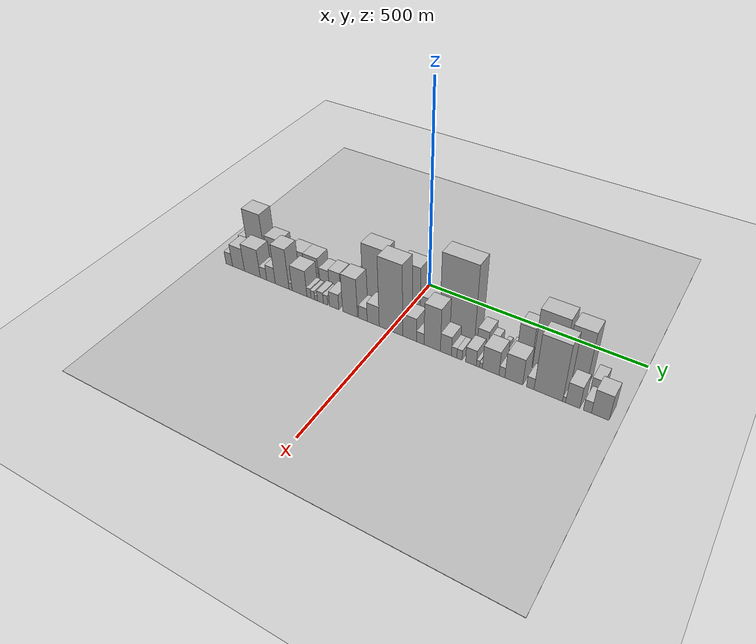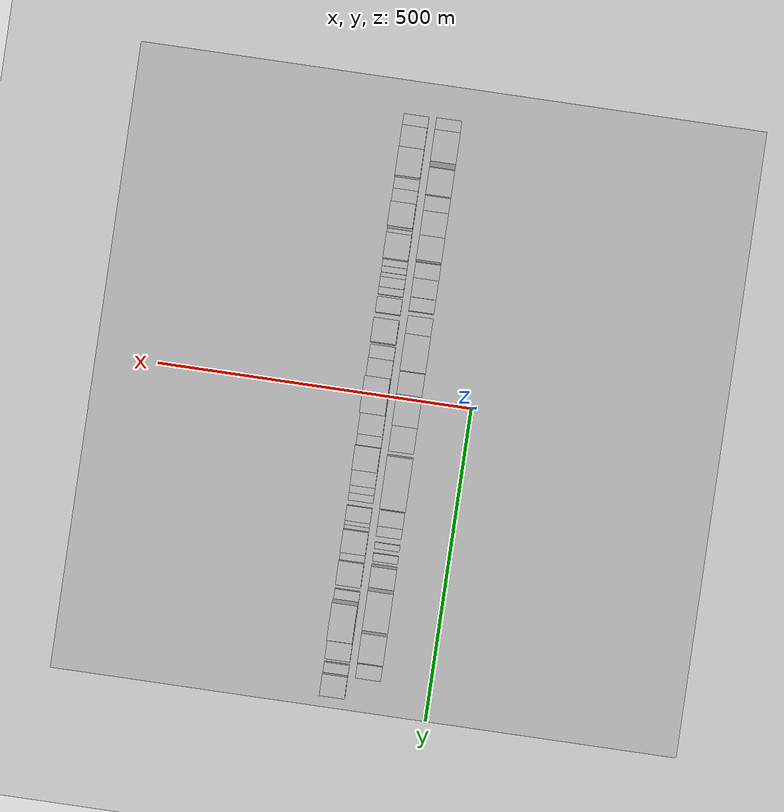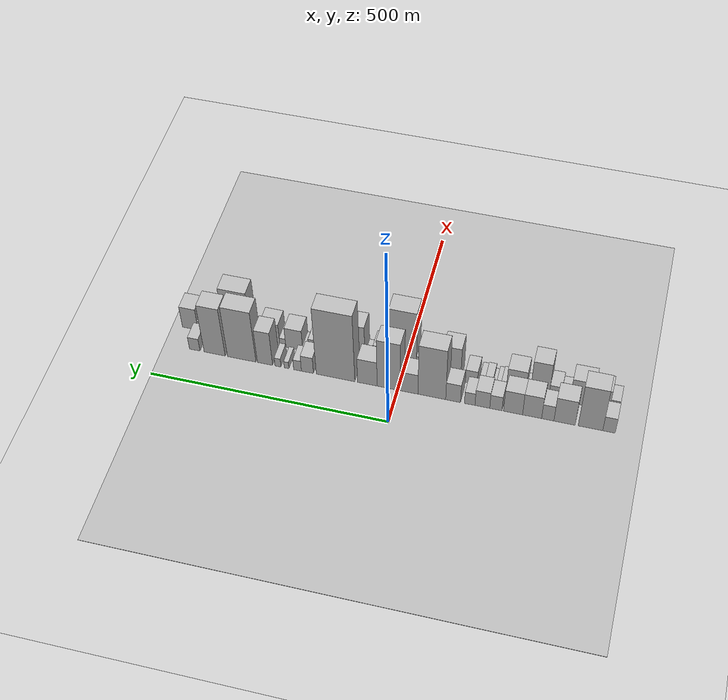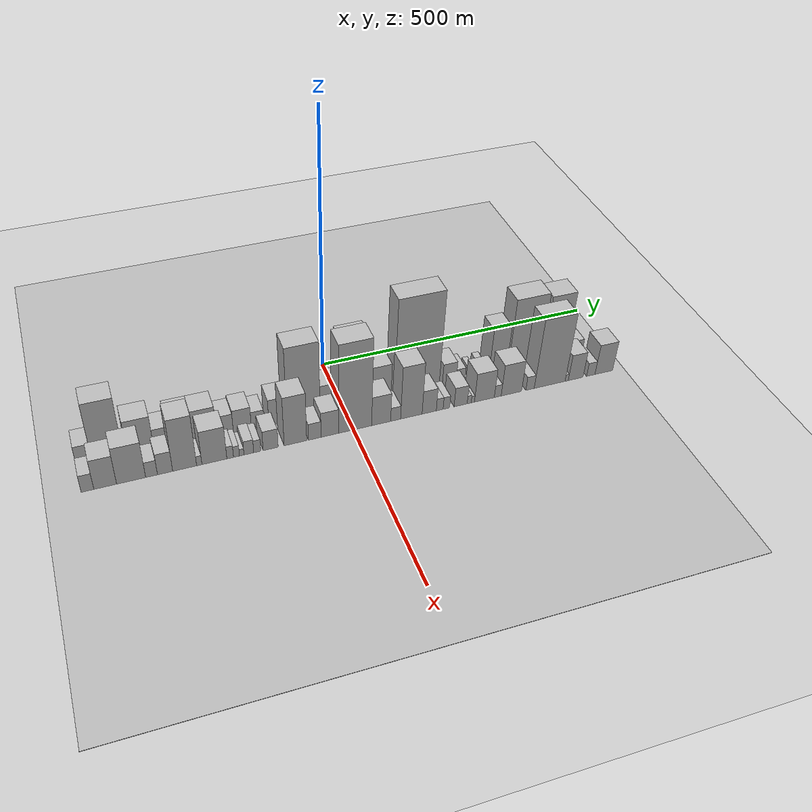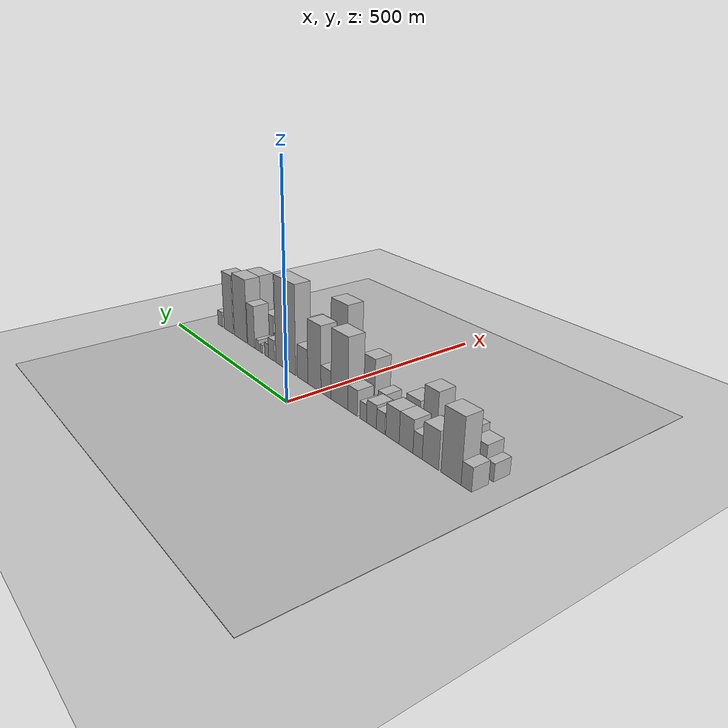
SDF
<sdf version="1.6">
 <world name="default">
  <include><name>ground_plane_1</name><uri>model://HANNAS_ground_plane</uri></include>
  <include>
   <name>ground_plane_2</name>
   <uri>model://HANNAS_ground_plane</uri>
   <pose>100 0 0  0 0 0</pose>
  </include>
  <model name="building_1">
   <static>1</static>
   <pose>100.0000 -431.5468 0 0.000000 0.000000 0.000000</pose>
   <link name="link">
    <pose>0 0 24.00 0 0 0</pose>
    <collision name="collision"><geometry><box><size>40.0000 24.9063 48.0000</size></box></geometry></collision>
    <visual name="visual">
     <cast_shadows>0</cast_shadows>
     <geometry><box><size>40.0000 24.9063 48.0000</size></box></geometry>
     <material>
      <script>
       <uri>model://HANNAS_wall/materials/scripts</uri>
       <uri>model://HANNAS_wall/materials/textures</uri>
       <name>vrc/HANNAS_wall</name>
      </script>
     </material>
    </visual>
   </link>
  </model>
  <model name="building_2">
   <static>1</static>
   <pose>100.0000 -394.4250 0 0.000000 0.000000 0.000000</pose>
   <link name="link">
    <pose>0 0 66.00 0 0 0</pose>
    <collision name="collision"><geometry><box><size>40.0000 49.3373 132.0000</size></box></geometry></collision>
    <visual name="visual">
     <cast_shadows>0</cast_shadows>
     <geometry><box><size>40.0000 49.3373 132.0000</size></box></geometry>
     <material>
      <script>
       <uri>model://HANNAS_wall/materials/scripts</uri>
       <uri>model://HANNAS_wall/materials/textures</uri>
       <name>vrc/HANNAS_wall</name>
      </script>
     </material>
    </visual>
   </link>
  </model>
  <model name="building_3">
   <static>1</static>
   <pose>100.0000 -342.3433 0 0.000000 0.000000 0.000000</pose>
   <link name="link">
    <pose>0 0 39.00 0 0 0</pose>
    <collision name="collision"><geometry><box><size>40.0000 42.8261 78.0000</size></box></geometry></collision>
    <visual name="visual">
     <cast_shadows>0</cast_shadows>
     <geometry><box><size>40.0000 42.8261 78.0000</size></box></geometry>
     <material>
      <script>
       <uri>model://HANNAS_wall/materials/scripts</uri>
       <uri>model://HANNAS_wall/materials/textures</uri>
       <name>vrc/HANNAS_wall</name>
      </script>
     </material>
    </visual>
   </link>
  </model>
  <model name="building_4">
   <static>1</static>
   <pose>100.0000 -308.4905 0 0.000000 0.000000 0.000000</pose>
   <link name="link">
    <pose>0 0 24.00 0 0 0</pose>
    <collision name="collision"><geometry><box><size>40.0000 24.8795 48.0000</size></box></geometry></collision>
    <visual name="visual">
     <cast_shadows>0</cast_shadows>
     <geometry><box><size>40.0000 24.8795 48.0000</size></box></geometry>
     <material>
      <script>
       <uri>model://HANNAS_wall/materials/scripts</uri>
       <uri>model://HANNAS_wall/materials/textures</uri>
       <name>vrc/HANNAS_wall</name>
      </script>
     </material>
    </visual>
   </link>
  </model>
  <model name="building_5">
   <static>1</static>
   <pose>100.0000 -276.7109 0 0.000000 0.000000 0.000000</pose>
   <link name="link">
    <pose>0 0 34.50 0 0 0</pose>
    <collision name="collision"><geometry><box><size>40.0000 38.6798 69.0000</size></box></geometry></collision>
    <visual name="visual">
     <cast_shadows>0</cast_shadows>
     <geometry><box><size>40.0000 38.6798 69.0000</size></box></geometry>
     <material>
      <script>
       <uri>model://HANNAS_wall/materials/scripts</uri>
       <uri>model://HANNAS_wall/materials/textures</uri>
       <name>vrc/HANNAS_wall</name>
      </script>
     </material>
    </visual>
   </link>
  </model>
  <model name="building_6">
   <static>1</static>
   <pose>100.0000 -237.9258 0 0.000000 0.000000 0.000000</pose>
   <link name="link">
    <pose>0 0 34.50 0 0 0</pose>
    <collision name="collision"><geometry><box><size>40.0000 38.8904 69.0000</size></box></geometry></collision>
    <visual name="visual">
     <cast_shadows>0</cast_shadows>
     <geometry><box><size>40.0000 38.8904 69.0000</size></box></geometry>
     <material>
      <script>
       <uri>model://HANNAS_wall/materials/scripts</uri>
       <uri>model://HANNAS_wall/materials/textures</uri>
       <name>vrc/HANNAS_wall</name>
      </script>
     </material>
    </visual>
   </link>
  </model>
  <model name="building_7">
   <static>1</static>
   <pose>100.0000 -202.9419 0 0.000000 0.000000 0.000000</pose>
   <link name="link">
    <pose>0 0 22.50 0 0 0</pose>
    <collision name="collision"><geometry><box><size>40.0000 25.0774 45.0000</size></box></geometry></collision>
    <visual name="visual">
     <cast_shadows>0</cast_shadows>
     <geometry><box><size>40.0000 25.0774 45.0000</size></box></geometry>
     <material>
      <script>
       <uri>model://HANNAS_wall/materials/scripts</uri>
       <uri>model://HANNAS_wall/materials/textures</uri>
       <name>vrc/HANNAS_wall</name>
      </script>
     </material>
    </visual>
   </link>
  </model>
  <model name="building_8">
   <static>1</static>
   <pose>100.0000 -175.2639 0 0.000000 0.000000 0.000000</pose>
   <link name="link">
    <pose>0 0 25.50 0 0 0</pose>
    <collision name="collision"><geometry><box><size>40.0000 30.2785 51.0000</size></box></geometry></collision>
    <visual name="visual">
     <cast_shadows>0</cast_shadows>
     <geometry><box><size>40.0000 30.2785 51.0000</size></box></geometry>
     <material>
      <script>
       <uri>model://HANNAS_wall/materials/scripts</uri>
       <uri>model://HANNAS_wall/materials/textures</uri>
       <name>vrc/HANNAS_wall</name>
      </script>
     </material>
    </visual>
   </link>
  </model>
  <model name="building_9">
   <static>1</static>
   <pose>100.0000 -149.2728 0 0.000000 0.000000 0.000000</pose>
   <link name="link">
    <pose>0 0 19.50 0 0 0</pose>
    <collision name="collision"><geometry><box><size>40.0000 21.7038 39.0000</size></box></geometry></collision>
    <visual name="visual">
     <cast_shadows>0</cast_shadows>
     <geometry><box><size>40.0000 21.7038 39.0000</size></box></geometry>
     <material>
      <script>
       <uri>model://HANNAS_wall/materials/scripts</uri>
       <uri>model://HANNAS_wall/materials/textures</uri>
       <name>vrc/HANNAS_wall</name>
      </script>
     </material>
    </visual>
   </link>
  </model>
  <model name="building_10">
   <static>1</static>
   <pose>100.0000 -115.1141 0 0.000000 0.000000 0.000000</pose>
   <link name="link">
    <pose>0 0 28.50 0 0 0</pose>
    <collision name="collision"><geometry><box><size>40.0000 30.6135 57.0000</size></box></geometry></collision>
    <visual name="visual">
     <cast_shadows>0</cast_shadows>
     <geometry><box><size>40.0000 30.6135 57.0000</size></box></geometry>
     <material>
      <script>
       <uri>model://HANNAS_wall/materials/scripts</uri>
       <uri>model://HANNAS_wall/materials/textures</uri>
       <name>vrc/HANNAS_wall</name>
      </script>
     </material>
    </visual>
   </link>
  </model>
  <model name="building_11">
   <static>1</static>
   <pose>100.0000 -71.0575 0 0.000000 0.000000 0.000000</pose>
   <link name="link">
    <pose>0 0 79.50 0 0 0</pose>
    <collision name="collision"><geometry><box><size>40.0000 57.4996 159.0000</size></box></geometry></collision>
    <visual name="visual">
     <cast_shadows>0</cast_shadows>
     <geometry><box><size>40.0000 57.4996 159.0000</size></box></geometry>
     <material>
      <script>
       <uri>model://HANNAS_wall/materials/scripts</uri>
       <uri>model://HANNAS_wall/materials/textures</uri>
       <name>vrc/HANNAS_wall</name>
      </script>
     </material>
    </visual>
   </link>
  </model>
  <model name="building_12">
   <static>1</static>
   <pose>100.0000 -24.0682 0 0.000000 0.000000 0.000000</pose>
   <link name="link">
    <pose>0 0 31.50 0 0 0</pose>
    <collision name="collision"><geometry><box><size>40.0000 36.4790 63.0000</size></box></geometry></collision>
    <visual name="visual">
     <cast_shadows>0</cast_shadows>
     <geometry><box><size>40.0000 36.4790 63.0000</size></box></geometry>
     <material>
      <script>
       <uri>model://HANNAS_wall/materials/scripts</uri>
       <uri>model://HANNAS_wall/materials/textures</uri>
       <name>vrc/HANNAS_wall</name>
      </script>
     </material>
    </visual>
   </link>
  </model>
  <model name="building_13">
   <static>1</static>
   <pose>100.0000 18.5881 0 0.000000 0.000000 0.000000</pose>
   <link name="link">
    <pose>0 0 75.00 0 0 0</pose>
    <collision name="collision"><geometry><box><size>40.0000 48.8337 150.0000</size></box></geometry></collision>
    <visual name="visual">
     <cast_shadows>0</cast_shadows>
     <geometry><box><size>40.0000 48.8337 150.0000</size></box></geometry>
     <material>
      <script>
       <uri>model://HANNAS_wall/materials/scripts</uri>
       <uri>model://HANNAS_wall/materials/textures</uri>
       <name>vrc/HANNAS_wall</name>
      </script>
     </material>
    </visual>
   </link>
  </model>
  <model name="building_14">
   <static>1</static>
   <pose>100.0000 63.4519 0 0.000000 0.000000 0.000000</pose>
   <link name="link">
    <pose>0 0 39.00 0 0 0</pose>
    <collision name="collision"><geometry><box><size>40.0000 40.8937 78.0000</size></box></geometry></collision>
    <visual name="visual">
     <cast_shadows>0</cast_shadows>
     <geometry><box><size>40.0000 40.8937 78.0000</size></box></geometry>
     <material>
      <script>
       <uri>model://HANNAS_wall/materials/scripts</uri>
       <uri>model://HANNAS_wall/materials/textures</uri>
       <name>vrc/HANNAS_wall</name>
      </script>
     </material>
    </visual>
   </link>
  </model>
  <model name="building_15">
   <static>1</static>
   <pose>100.0000 130.7232 0 0.000000 0.000000 0.000000</pose>
   <link name="link">
    <pose>0 0 105.00 0 0 0</pose>
    <collision name="collision"><geometry><box><size>40.0000 81.6489 210.0000</size></box></geometry></collision>
    <visual name="visual">
     <cast_shadows>0</cast_shadows>
     <geometry><box><size>40.0000 81.6489 210.0000</size></box></geometry>
     <material>
      <script>
       <uri>model://HANNAS_wall/materials/scripts</uri>
       <uri>model://HANNAS_wall/materials/textures</uri>
       <name>vrc/HANNAS_wall</name>
      </script>
     </material>
    </visual>
   </link>
  </model>
  <model name="building_16">
   <static>1</static>
   <pose>100.0000 190.3624 0 0.000000 0.000000 0.000000</pose>
   <link name="link">
    <pose>0 0 25.50 0 0 0</pose>
    <collision name="collision"><geometry><box><size>40.0000 25.6295 51.0000</size></box></geometry></collision>
    <visual name="visual">
     <cast_shadows>0</cast_shadows>
     <geometry><box><size>40.0000 25.6295 51.0000</size></box></geometry>
     <material>
      <script>
       <uri>model://HANNAS_wall/materials/scripts</uri>
       <uri>model://HANNAS_wall/materials/textures</uri>
       <name>vrc/HANNAS_wall</name>
      </script>
     </material>
    </visual>
   </link>
  </model>
  <model name="building_17">
   <static>1</static>
   <pose>100.0000 211.4965 0 0.000000 0.000000 0.000000</pose>
   <link name="link">
    <pose>0 0 16.50 0 0 0</pose>
    <collision name="collision"><geometry><box><size>40.0000 16.6385 33.0000</size></box></geometry></collision>
    <visual name="visual">
     <cast_shadows>0</cast_shadows>
     <geometry><box><size>40.0000 16.6385 33.0000</size></box></geometry>
     <material>
      <script>
       <uri>model://HANNAS_wall/materials/scripts</uri>
       <uri>model://HANNAS_wall/materials/textures</uri>
       <name>vrc/HANNAS_wall</name>
      </script>
     </material>
    </visual>
   </link>
  </model>
  <model name="building_18">
   <static>1</static>
   <pose>100.0000 234.9167 0 0.000000 0.000000 0.000000</pose>
   <link name="link">
    <pose>0 0 10.50 0 0 0</pose>
    <collision name="collision"><geometry><box><size>40.0000 10.2020 21.0000</size></box></geometry></collision>
    <visual name="visual">
     <cast_shadows>0</cast_shadows>
     <geometry><box><size>40.0000 10.2020 21.0000</size></box></geometry>
     <material>
      <script>
       <uri>model://HANNAS_wall/materials/scripts</uri>
       <uri>model://HANNAS_wall/materials/textures</uri>
       <name>vrc/HANNAS_wall</name>
      </script>
     </material>
    </visual>
   </link>
  </model>
  <model name="building_19">
   <static>1</static>
   <pose>100.0000 253.3755 0 0.000000 0.000000 0.000000</pose>
   <link name="link">
    <pose>0 0 13.50 0 0 0</pose>
    <collision name="collision"><geometry><box><size>40.0000 12.7156 27.0000</size></box></geometry></collision>
    <visual name="visual">
     <cast_shadows>0</cast_shadows>
     <geometry><box><size>40.0000 12.7156 27.0000</size></box></geometry>
     <material>
      <script>
       <uri>model://HANNAS_wall/materials/scripts</uri>
       <uri>model://HANNAS_wall/materials/textures</uri>
       <name>vrc/HANNAS_wall</name>
      </script>
     </material>
    </visual>
   </link>
  </model>
  <model name="building_20">
   <static>1</static>
   <pose>100.0000 281.1488 0 0.000000 0.000000 0.000000</pose>
   <link name="link">
    <pose>0 0 52.50 0 0 0</pose>
    <collision name="collision"><geometry><box><size>40.0000 32.8309 105.0000</size></box></geometry></collision>
    <visual name="visual">
     <cast_shadows>0</cast_shadows>
     <geometry><box><size>40.0000 32.8309 105.0000</size></box></geometry>
     <material>
      <script>
       <uri>model://HANNAS_wall/materials/scripts</uri>
       <uri>model://HANNAS_wall/materials/textures</uri>
       <name>vrc/HANNAS_wall</name>
      </script>
     </material>
    </visual>
   </link>
  </model>
  <model name="building_21">
   <static>1</static>
   <pose>100.0000 331.3541 0 0.000000 0.000000 0.000000</pose>
   <link name="link">
    <pose>0 0 79.50 0 0 0</pose>
    <collision name="collision"><geometry><box><size>40.0000 61.5797 159.0000</size></box></geometry></collision>
    <visual name="visual">
     <cast_shadows>0</cast_shadows>
     <geometry><box><size>40.0000 61.5797 159.0000</size></box></geometry>
     <material>
      <script>
       <uri>model://HANNAS_wall/materials/scripts</uri>
       <uri>model://HANNAS_wall/materials/textures</uri>
       <name>vrc/HANNAS_wall</name>
      </script>
     </material>
    </visual>
   </link>
  </model>
  <model name="building_22">
   <static>1</static>
   <pose>100.0000 390.0236 0 0.000000 0.000000 0.000000</pose>
   <link name="link">
    <pose>0 0 75.00 0 0 0</pose>
    <collision name="collision"><geometry><box><size>40.0000 45.7593 150.0000</size></box></geometry></collision>
    <visual name="visual">
     <cast_shadows>0</cast_shadows>
     <geometry><box><size>40.0000 45.7593 150.0000</size></box></geometry>
     <material>
      <script>
       <uri>model://HANNAS_wall/materials/scripts</uri>
       <uri>model://HANNAS_wall/materials/textures</uri>
       <name>vrc/HANNAS_wall</name>
      </script>
     </material>
    </visual>
   </link>
  </model>
  <model name="building_23">
   <static>1</static>
   <pose>100.0000 433.3741 0 0.000000 0.000000 0.000000</pose>
   <link name="link">
    <pose>0 0 19.50 0 0 0</pose>
    <collision name="collision"><geometry><box><size>40.0000 22.9419 39.0000</size></box></geometry></collision>
    <visual name="visual">
     <cast_shadows>0</cast_shadows>
     <geometry><box><size>40.0000 22.9419 39.0000</size></box></geometry>
     <material>
      <script>
       <uri>model://HANNAS_wall/materials/scripts</uri>
       <uri>model://HANNAS_wall/materials/textures</uri>
       <name>vrc/HANNAS_wall</name>
      </script>
     </material>
    </visual>
   </link>
  </model>
  <model name="building_24">
   <static>1</static>
   <pose>152.0000 -434.2456 0 0.000000 0.000000 0.000000</pose>
   <link name="link">
    <pose>0 0 18.00 0 0 0</pose>
    <collision name="collision"><geometry><box><size>40.0000 19.5089 36.0000</size></box></geometry></collision>
    <visual name="visual">
     <cast_shadows>0</cast_shadows>
     <geometry><box><size>40.0000 19.5089 36.0000</size></box></geometry>
     <material>
      <script>
       <uri>model://HANNAS_wall/materials/scripts</uri>
       <uri>model://HANNAS_wall/materials/textures</uri>
       <name>vrc/HANNAS_wall</name>
      </script>
     </material>
    </visual>
   </link>
  </model>
  <model name="building_25">
   <static>1</static>
   <pose>152.0000 -406.9148 0 0.000000 0.000000 0.000000</pose>
   <link name="link">
    <pose>0 0 31.50 0 0 0</pose>
    <collision name="collision"><geometry><box><size>40.0000 35.1527 63.0000</size></box></geometry></collision>
    <visual name="visual">
     <cast_shadows>0</cast_shadows>
     <geometry><box><size>40.0000 35.1527 63.0000</size></box></geometry>
     <material>
      <script>
       <uri>model://HANNAS_wall/materials/scripts</uri>
       <uri>model://HANNAS_wall/materials/textures</uri>
       <name>vrc/HANNAS_wall</name>
      </script>
     </material>
    </visual>
   </link>
  </model>
  <model name="building_26">
   <static>1</static>
   <pose>152.0000 -366.6179 0 0.000000 0.000000 0.000000</pose>
   <link name="link">
    <pose>0 0 39.00 0 0 0</pose>
    <collision name="collision"><geometry><box><size>40.0000 45.4410 78.0000</size></box></geometry></collision>
    <visual name="visual">
     <cast_shadows>0</cast_shadows>
     <geometry><box><size>40.0000 45.4410 78.0000</size></box></geometry>
     <material>
      <script>
       <uri>model://HANNAS_wall/materials/scripts</uri>
       <uri>model://HANNAS_wall/materials/textures</uri>
       <name>vrc/HANNAS_wall</name>
      </script>
     </material>
    </visual>
   </link>
  </model>
  <model name="building_27">
   <static>1</static>
   <pose>152.0000 -334.5764 0 0.000000 0.000000 0.000000</pose>
   <link name="link">
    <pose>0 0 16.50 0 0 0</pose>
    <collision name="collision"><geometry><box><size>40.0000 18.6420 33.0000</size></box></geometry></collision>
    <visual name="visual">
     <cast_shadows>0</cast_shadows>
     <geometry><box><size>40.0000 18.6420 33.0000</size></box></geometry>
     <material>
      <script>
       <uri>model://HANNAS_wall/materials/scripts</uri>
       <uri>model://HANNAS_wall/materials/textures</uri>
       <name>vrc/HANNAS_wall</name>
      </script>
     </material>
    </visual>
   </link>
  </model>
  <model name="building_28">
   <static>1</static>
   <pose>152.0000 -313.1816 0 0.000000 0.000000 0.000000</pose>
   <link name="link">
    <pose>0 0 22.50 0 0 0</pose>
    <collision name="collision"><geometry><box><size>40.0000 24.1477 45.0000</size></box></geometry></collision>
    <visual name="visual">
     <cast_shadows>0</cast_shadows>
     <geometry><box><size>40.0000 24.1477 45.0000</size></box></geometry>
     <material>
      <script>
       <uri>model://HANNAS_wall/materials/scripts</uri>
       <uri>model://HANNAS_wall/materials/textures</uri>
       <name>vrc/HANNAS_wall</name>
      </script>
     </material>
    </visual>
   </link>
  </model>
  <model name="building_29">
   <static>1</static>
   <pose>152.0000 -281.9348 0 0.000000 0.000000 0.000000</pose>
   <link name="link">
    <pose>0 0 55.50 0 0 0</pose>
    <collision name="collision"><geometry><box><size>40.0000 38.3457 111.0000</size></box></geometry></collision>
    <visual name="visual">
     <cast_shadows>0</cast_shadows>
     <geometry><box><size>40.0000 38.3457 111.0000</size></box></geometry>
     <material>
      <script>
       <uri>model://HANNAS_wall/materials/scripts</uri>
       <uri>model://HANNAS_wall/materials/textures</uri>
       <name>vrc/HANNAS_wall</name>
      </script>
     </material>
    </visual>
   </link>
  </model>
  <model name="building_30">
   <static>1</static>
   <pose>152.0000 -258.5092 0 0.000000 0.000000 0.000000</pose>
   <link name="link">
    <pose>0 0 10.50 0 0 0</pose>
    <collision name="collision"><geometry><box><size>40.0000 8.5056 21.0000</size></box></geometry></collision>
    <visual name="visual">
     <cast_shadows>0</cast_shadows>
     <geometry><box><size>40.0000 8.5056 21.0000</size></box></geometry>
     <material>
      <script>
       <uri>model://HANNAS_wall/materials/scripts</uri>
       <uri>model://HANNAS_wall/materials/textures</uri>
       <name>vrc/HANNAS_wall</name>
      </script>
     </material>
    </visual>
   </link>
  </model>
  <model name="building_31">
   <static>1</static>
   <pose>152.0000 -233.9885 0 0.000000 0.000000 0.000000</pose>
   <link name="link">
    <pose>0 0 36.00 0 0 0</pose>
    <collision name="collision"><geometry><box><size>40.0000 40.5359 72.0000</size></box></geometry></collision>
    <visual name="visual">
     <cast_shadows>0</cast_shadows>
     <geometry><box><size>40.0000 40.5359 72.0000</size></box></geometry>
     <material>
      <script>
       <uri>model://HANNAS_wall/materials/scripts</uri>
       <uri>model://HANNAS_wall/materials/textures</uri>
       <name>vrc/HANNAS_wall</name>
      </script>
     </material>
    </visual>
   </link>
  </model>
  <model name="building_32">
   <static>1</static>
   <pose>152.0000 -208.2882 0 0.000000 0.000000 0.000000</pose>
   <link name="link">
    <pose>0 0 13.50 0 0 0</pose>
    <collision name="collision"><geometry><box><size>40.0000 10.8647 27.0000</size></box></geometry></collision>
    <visual name="visual">
     <cast_shadows>0</cast_shadows>
     <geometry><box><size>40.0000 10.8647 27.0000</size></box></geometry>
     <material>
      <script>
       <uri>model://HANNAS_wall/materials/scripts</uri>
       <uri>model://HANNAS_wall/materials/textures</uri>
       <name>vrc/HANNAS_wall</name>
      </script>
     </material>
    </visual>
   </link>
  </model>
  <model name="building_33">
   <static>1</static>
   <pose>152.0000 -197.9840 0 0.000000 0.000000 0.000000</pose>
   <link name="link">
    <pose>0 0 12.00 0 0 0</pose>
    <collision name="collision"><geometry><box><size>40.0000 9.7437 24.0000</size></box></geometry></collision>
    <visual name="visual">
     <cast_shadows>0</cast_shadows>
     <geometry><box><size>40.0000 9.7437 24.0000</size></box></geometry>
     <material>
      <script>
       <uri>model://HANNAS_wall/materials/scripts</uri>
       <uri>model://HANNAS_wall/materials/textures</uri>
       <name>vrc/HANNAS_wall</name>
      </script>
     </material>
    </visual>
   </link>
  </model>
  <model name="building_34">
   <static>1</static>
   <pose>152.0000 -189.3923 0 0.000000 0.000000 0.000000</pose>
   <link name="link">
    <pose>0 0 7.50 0 0 0</pose>
    <collision name="collision"><geometry><box><size>40.0000 7.4397 15.0000</size></box></geometry></collision>
    <visual name="visual">
     <cast_shadows>0</cast_shadows>
     <geometry><box><size>40.0000 7.4397 15.0000</size></box></geometry>
     <material>
      <script>
       <uri>model://HANNAS_wall/materials/scripts</uri>
       <uri>model://HANNAS_wall/materials/textures</uri>
       <name>vrc/HANNAS_wall</name>
      </script>
     </material>
    </visual>
   </link>
  </model>
  <model name="building_35">
   <static>1</static>
   <pose>152.0000 -177.6671 0 0.000000 0.000000 0.000000</pose>
   <link name="link">
    <pose>0 0 15.00 0 0 0</pose>
    <collision name="collision"><geometry><box><size>40.0000 16.0108 30.0000</size></box></geometry></collision>
    <visual name="visual">
     <cast_shadows>0</cast_shadows>
     <geometry><box><size>40.0000 16.0108 30.0000</size></box></geometry>
     <material>
      <script>
       <uri>model://HANNAS_wall/materials/scripts</uri>
       <uri>model://HANNAS_wall/materials/textures</uri>
       <name>vrc/HANNAS_wall</name>
      </script>
     </material>
    </visual>
   </link>
  </model>
  <model name="building_36">
   <static>1</static>
   <pose>152.0000 -163.8458 0 0.000000 0.000000 0.000000</pose>
   <link name="link">
    <pose>0 0 13.50 0 0 0</pose>
    <collision name="collision"><geometry><box><size>40.0000 11.6318 27.0000</size></box></geometry></collision>
    <visual name="visual">
     <cast_shadows>0</cast_shadows>
     <geometry><box><size>40.0000 11.6318 27.0000</size></box></geometry>
     <material>
      <script>
       <uri>model://HANNAS_wall/materials/scripts</uri>
       <uri>model://HANNAS_wall/materials/textures</uri>
       <name>vrc/HANNAS_wall</name>
      </script>
     </material>
    </visual>
   </link>
  </model>
  <model name="building_37">
   <static>1</static>
   <pose>152.0000 -141.4723 0 0.000000 0.000000 0.000000</pose>
   <link name="link">
    <pose>0 0 21.00 0 0 0</pose>
    <collision name="collision"><geometry><box><size>40.0000 25.1153 42.0000</size></box></geometry></collision>
    <visual name="visual">
     <cast_shadows>0</cast_shadows>
     <geometry><box><size>40.0000 25.1153 42.0000</size></box></geometry>
     <material>
      <script>
       <uri>model://HANNAS_wall/materials/scripts</uri>
       <uri>model://HANNAS_wall/materials/textures</uri>
       <name>vrc/HANNAS_wall</name>
      </script>
     </material>
    </visual>
   </link>
  </model>
  <model name="building_38">
   <static>1</static>
   <pose>152.0000 -99.9473 0 0.000000 0.000000 0.000000</pose>
   <link name="link">
    <pose>0 0 52.50 0 0 0</pose>
    <collision name="collision"><geometry><box><size>40.0000 37.9346 105.0000</size></box></geometry></collision>
    <visual name="visual">
     <cast_shadows>0</cast_shadows>
     <geometry><box><size>40.0000 37.9346 105.0000</size></box></geometry>
     <material>
      <script>
       <uri>model://HANNAS_wall/materials/scripts</uri>
       <uri>model://HANNAS_wall/materials/textures</uri>
       <name>vrc/HANNAS_wall</name>
      </script>
     </material>
    </visual>
   </link>
  </model>
  <model name="building_39">
   <static>1</static>
   <pose>152.0000 -67.2536 0 0.000000 0.000000 0.000000</pose>
   <link name="link">
    <pose>0 0 18.00 0 0 0</pose>
    <collision name="collision"><geometry><box><size>40.0000 21.4529 36.0000</size></box></geometry></collision>
    <visual name="visual">
     <cast_shadows>0</cast_shadows>
     <geometry><box><size>40.0000 21.4529 36.0000</size></box></geometry>
     <material>
      <script>
       <uri>model://HANNAS_wall/materials/scripts</uri>
       <uri>model://HANNAS_wall/materials/textures</uri>
       <name>vrc/HANNAS_wall</name>
      </script>
     </material>
    </visual>
   </link>
  </model>
  <model name="building_40">
   <static>1</static>
   <pose>152.0000 -41.5194 0 0.000000 0.000000 0.000000</pose>
   <link name="link">
    <pose>0 0 27.00 0 0 0</pose>
    <collision name="collision"><geometry><box><size>40.0000 30.0154 54.0000</size></box></geometry></collision>
    <visual name="visual">
     <cast_shadows>0</cast_shadows>
     <geometry><box><size>40.0000 30.0154 54.0000</size></box></geometry>
     <material>
      <script>
       <uri>model://HANNAS_wall/materials/scripts</uri>
       <uri>model://HANNAS_wall/materials/textures</uri>
       <name>vrc/HANNAS_wall</name>
      </script>
     </material>
    </visual>
   </link>
  </model>
  <model name="building_41">
   <static>1</static>
   <pose>152.0000 2.1906 0 0.000000 0.000000 0.000000</pose>
   <link name="link">
    <pose>0 0 94.50 0 0 0</pose>
    <collision name="collision"><geometry><box><size>40.0000 57.4046 189.0000</size></box></geometry></collision>
    <visual name="visual">
     <cast_shadows>0</cast_shadows>
     <geometry><box><size>40.0000 57.4046 189.0000</size></box></geometry>
     <material>
      <script>
       <uri>model://HANNAS_wall/materials/scripts</uri>
       <uri>model://HANNAS_wall/materials/textures</uri>
       <name>vrc/HANNAS_wall</name>
      </script>
     </material>
    </visual>
   </link>
  </model>
  <model name="building_42">
   <static>1</static>
   <pose>152.0000 47.6087 0 0.000000 0.000000 0.000000</pose>
   <link name="link">
    <pose>0 0 31.50 0 0 0</pose>
    <collision name="collision"><geometry><box><size>40.0000 33.4317 63.0000</size></box></geometry></collision>
    <visual name="visual">
     <cast_shadows>0</cast_shadows>
     <geometry><box><size>40.0000 33.4317 63.0000</size></box></geometry>
     <material>
      <script>
       <uri>model://HANNAS_wall/materials/scripts</uri>
       <uri>model://HANNAS_wall/materials/textures</uri>
       <name>vrc/HANNAS_wall</name>
      </script>
     </material>
    </visual>
   </link>
  </model>
  <model name="building_43">
   <static>1</static>
   <pose>152.0000 73.0840 0 0.000000 0.000000 0.000000</pose>
   <link name="link">
    <pose>0 0 15.00 0 0 0</pose>
    <collision name="collision"><geometry><box><size>40.0000 17.5189 30.0000</size></box></geometry></collision>
    <visual name="visual">
     <cast_shadows>0</cast_shadows>
     <geometry><box><size>40.0000 17.5189 30.0000</size></box></geometry>
     <material>
      <script>
       <uri>model://HANNAS_wall/materials/scripts</uri>
       <uri>model://HANNAS_wall/materials/textures</uri>
       <name>vrc/HANNAS_wall</name>
      </script>
     </material>
    </visual>
   </link>
  </model>
  <model name="building_44">
   <static>1</static>
   <pose>152.0000 101.0402 0 0.000000 0.000000 0.000000</pose>
   <link name="link">
    <pose>0 0 57.00 0 0 0</pose>
    <collision name="collision"><geometry><box><size>40.0000 38.3934 114.0000</size></box></geometry></collision>
    <visual name="visual">
     <cast_shadows>0</cast_shadows>
     <geometry><box><size>40.0000 38.3934 114.0000</size></box></geometry>
     <material>
      <script>
       <uri>model://HANNAS_wall/materials/scripts</uri>
       <uri>model://HANNAS_wall/materials/textures</uri>
       <name>vrc/HANNAS_wall</name>
      </script>
     </material>
    </visual>
   </link>
  </model>
  <model name="building_45">
   <static>1</static>
   <pose>152.0000 133.0138 0 0.000000 0.000000 0.000000</pose>
   <link name="link">
    <pose>0 0 25.50 0 0 0</pose>
    <collision name="collision"><geometry><box><size>40.0000 25.5537 51.0000</size></box></geometry></collision>
    <visual name="visual">
     <cast_shadows>0</cast_shadows>
     <geometry><box><size>40.0000 25.5537 51.0000</size></box></geometry>
     <material>
      <script>
       <uri>model://HANNAS_wall/materials/scripts</uri>
       <uri>model://HANNAS_wall/materials/textures</uri>
       <name>vrc/HANNAS_wall</name>
      </script>
     </material>
    </visual>
   </link>
  </model>
  <model name="building_46">
   <static>1</static>
   <pose>152.0000 151.9377 0 0.000000 0.000000 0.000000</pose>
   <link name="link">
    <pose>0 0 13.50 0 0 0</pose>
    <collision name="collision"><geometry><box><size>40.0000 12.2942 27.0000</size></box></geometry></collision>
    <visual name="visual">
     <cast_shadows>0</cast_shadows>
     <geometry><box><size>40.0000 12.2942 27.0000</size></box></geometry>
     <material>
      <script>
       <uri>model://HANNAS_wall/materials/scripts</uri>
       <uri>model://HANNAS_wall/materials/textures</uri>
       <name>vrc/HANNAS_wall</name>
      </script>
     </material>
    </visual>
   </link>
  </model>
  <model name="building_47">
   <static>1</static>
   <pose>152.0000 164.0589 0 0.000000 0.000000 0.000000</pose>
   <link name="link">
    <pose>0 0 13.50 0 0 0</pose>
    <collision name="collision"><geometry><box><size>40.0000 11.9480 27.0000</size></box></geometry></collision>
    <visual name="visual">
     <cast_shadows>0</cast_shadows>
     <geometry><box><size>40.0000 11.9480 27.0000</size></box></geometry>
     <material>
      <script>
       <uri>model://HANNAS_wall/materials/scripts</uri>
       <uri>model://HANNAS_wall/materials/textures</uri>
       <name>vrc/HANNAS_wall</name>
      </script>
     </material>
    </visual>
   </link>
  </model>
  <model name="building_48">
   <static>1</static>
   <pose>152.0000 190.0374 0 0.000000 0.000000 0.000000</pose>
   <link name="link">
    <pose>0 0 21.00 0 0 0</pose>
    <collision name="collision"><geometry><box><size>40.0000 24.0091 42.0000</size></box></geometry></collision>
    <visual name="visual">
     <cast_shadows>0</cast_shadows>
     <geometry><box><size>40.0000 24.0091 42.0000</size></box></geometry>
     <material>
      <script>
       <uri>model://HANNAS_wall/materials/scripts</uri>
       <uri>model://HANNAS_wall/materials/textures</uri>
       <name>vrc/HANNAS_wall</name>
      </script>
     </material>
    </visual>
   </link>
  </model>
  <model name="building_49">
   <static>1</static>
   <pose>152.0000 205.6479 0 0.000000 0.000000 0.000000</pose>
   <link name="link">
    <pose>0 0 9.00 0 0 0</pose>
    <collision name="collision"><geometry><box><size>40.0000 7.2119 18.0000</size></box></geometry></collision>
    <visual name="visual">
     <cast_shadows>0</cast_shadows>
     <geometry><box><size>40.0000 7.2119 18.0000</size></box></geometry>
     <material>
      <script>
       <uri>model://HANNAS_wall/materials/scripts</uri>
       <uri>model://HANNAS_wall/materials/textures</uri>
       <name>vrc/HANNAS_wall</name>
      </script>
     </material>
    </visual>
   </link>
  </model>
  <model name="building_50">
   <static>1</static>
   <pose>152.0000 212.3237 0 0.000000 0.000000 0.000000</pose>
   <link name="link">
    <pose>0 0 7.50 0 0 0</pose>
    <collision name="collision"><geometry><box><size>40.0000 6.1396 15.0000</size></box></geometry></collision>
    <visual name="visual">
     <cast_shadows>0</cast_shadows>
     <geometry><box><size>40.0000 6.1396 15.0000</size></box></geometry>
     <material>
      <script>
       <uri>model://HANNAS_wall/materials/scripts</uri>
       <uri>model://HANNAS_wall/materials/textures</uri>
       <name>vrc/HANNAS_wall</name>
      </script>
     </material>
    </visual>
   </link>
  </model>
  <model name="building_51">
   <static>1</static>
   <pose>152.0000 233.7148 0 0.000000 0.000000 0.000000</pose>
   <link name="link">
    <pose>0 0 31.50 0 0 0</pose>
    <collision name="collision"><geometry><box><size>40.0000 36.6426 63.0000</size></box></geometry></collision>
    <visual name="visual">
     <cast_shadows>0</cast_shadows>
     <geometry><box><size>40.0000 36.6426 63.0000</size></box></geometry>
     <material>
      <script>
       <uri>model://HANNAS_wall/materials/scripts</uri>
       <uri>model://HANNAS_wall/materials/textures</uri>
       <name>vrc/HANNAS_wall</name>
      </script>
     </material>
    </visual>
   </link>
  </model>
  <model name="building_52">
   <static>1</static>
   <pose>152.0000 258.3773 0 0.000000 0.000000 0.000000</pose>
   <link name="link">
    <pose>0 0 13.50 0 0 0</pose>
    <collision name="collision"><geometry><box><size>40.0000 12.6822 27.0000</size></box></geometry></collision>
    <visual name="visual">
     <cast_shadows>0</cast_shadows>
     <geometry><box><size>40.0000 12.6822 27.0000</size></box></geometry>
     <material>
      <script>
       <uri>model://HANNAS_wall/materials/scripts</uri>
       <uri>model://HANNAS_wall/materials/textures</uri>
       <name>vrc/HANNAS_wall</name>
      </script>
     </material>
    </visual>
   </link>
  </model>
  <model name="building_53">
   <static>1</static>
   <pose>152.0000 283.8564 0 0.000000 0.000000 0.000000</pose>
   <link name="link">
    <pose>0 0 34.50 0 0 0</pose>
    <collision name="collision"><geometry><box><size>40.0000 38.2759 69.0000</size></box></geometry></collision>
    <visual name="visual">
     <cast_shadows>0</cast_shadows>
     <geometry><box><size>40.0000 38.2759 69.0000</size></box></geometry>
     <material>
      <script>
       <uri>model://HANNAS_wall/materials/scripts</uri>
       <uri>model://HANNAS_wall/materials/textures</uri>
       <name>vrc/HANNAS_wall</name>
      </script>
     </material>
    </visual>
   </link>
  </model>
  <model name="building_54">
   <static>1</static>
   <pose>152.0000 318.9503 0 0.000000 0.000000 0.000000</pose>
   <link name="link">
    <pose>0 0 15.00 0 0 0</pose>
    <collision name="collision"><geometry><box><size>40.0000 15.9120 30.0000</size></box></geometry></collision>
    <visual name="visual">
     <cast_shadows>0</cast_shadows>
     <geometry><box><size>40.0000 15.9120 30.0000</size></box></geometry>
     <material>
      <script>
       <uri>model://HANNAS_wall/materials/scripts</uri>
       <uri>model://HANNAS_wall/materials/textures</uri>
       <name>vrc/HANNAS_wall</name>
      </script>
     </material>
    </visual>
   </link>
  </model>
  <model name="building_55">
   <static>1</static>
   <pose>152.0000 356.3163 0 0.000000 0.000000 0.000000</pose>
   <link name="link">
    <pose>0 0 75.00 0 0 0</pose>
    <collision name="collision"><geometry><box><size>40.0000 58.8200 150.0000</size></box></geometry></collision>
    <visual name="visual">
     <cast_shadows>0</cast_shadows>
     <geometry><box><size>40.0000 58.8200 150.0000</size></box></geometry>
     <material>
      <script>
       <uri>model://HANNAS_wall/materials/scripts</uri>
       <uri>model://HANNAS_wall/materials/textures</uri>
       <name>vrc/HANNAS_wall</name>
      </script>
     </material>
    </visual>
   </link>
  </model>
  <model name="building_56">
   <static>1</static>
   <pose>152.0000 388.8176 0 0.000000 0.000000 0.000000</pose>
   <link name="link">
    <pose>0 0 7.50 0 0 0</pose>
    <collision name="collision"><geometry><box><size>40.0000 6.1825 15.0000</size></box></geometry></collision>
    <visual name="visual">
     <cast_shadows>0</cast_shadows>
     <geometry><box><size>40.0000 6.1825 15.0000</size></box></geometry>
     <material>
      <script>
       <uri>model://HANNAS_wall/materials/scripts</uri>
       <uri>model://HANNAS_wall/materials/textures</uri>
       <name>vrc/HANNAS_wall</name>
      </script>
     </material>
    </visual>
   </link>
  </model>
  <model name="building_57">
   <static>1</static>
   <pose>152.0000 406.1988 0 0.000000 0.000000 0.000000</pose>
   <link name="link">
    <pose>0 0 28.50 0 0 0</pose>
    <collision name="collision"><geometry><box><size>40.0000 28.5799 57.0000</size></box></geometry></collision>
    <visual name="visual">
     <cast_shadows>0</cast_shadows>
     <geometry><box><size>40.0000 28.5799 57.0000</size></box></geometry>
     <material>
      <script>
       <uri>model://HANNAS_wall/materials/scripts</uri>
       <uri>model://HANNAS_wall/materials/textures</uri>
       <name>vrc/HANNAS_wall</name>
      </script>
     </material>
    </visual>
   </link>
  </model>
  <model name="building_58">
   <static>1</static>
   <pose>152.0000 435.5803 0 0.000000 0.000000 0.000000</pose>
   <link name="link">
    <pose>0 0 15.00 0 0 0</pose>
    <collision name="collision"><geometry><box><size>40.0000 16.1832 30.0000</size></box></geometry></collision>
    <visual name="visual">
     <cast_shadows>0</cast_shadows>
     <geometry><box><size>40.0000 16.1832 30.0000</size></box></geometry>
     <material>
      <script>
       <uri>model://HANNAS_wall/materials/scripts</uri>
       <uri>model://HANNAS_wall/materials/textures</uri>
       <name>vrc/HANNAS_wall</name>
      </script>
     </material>
    </visual>
   </link>
  </model>
  <model name="building_59">
   <static>1</static>
   <pose>152.0000 460.9597 0 0.000000 0.000000 0.000000</pose>
   <link name="link">
    <pose>0 0 33.00 0 0 0</pose>
    <collision name="collision"><geometry><box><size>40.0000 34.5755 66.0000</size></box></geometry></collision>
    <visual name="visual">
     <cast_shadows>0</cast_shadows>
     <geometry><box><size>40.0000 34.5755 66.0000</size></box></geometry>
     <material>
      <script>
       <uri>model://HANNAS_wall/materials/scripts</uri>
       <uri>model://HANNAS_wall/materials/textures</uri>
       <name>vrc/HANNAS_wall</name>
      </script>
     </material>
    </visual>
   </link>
  </model>
 </world>
</sdf>
